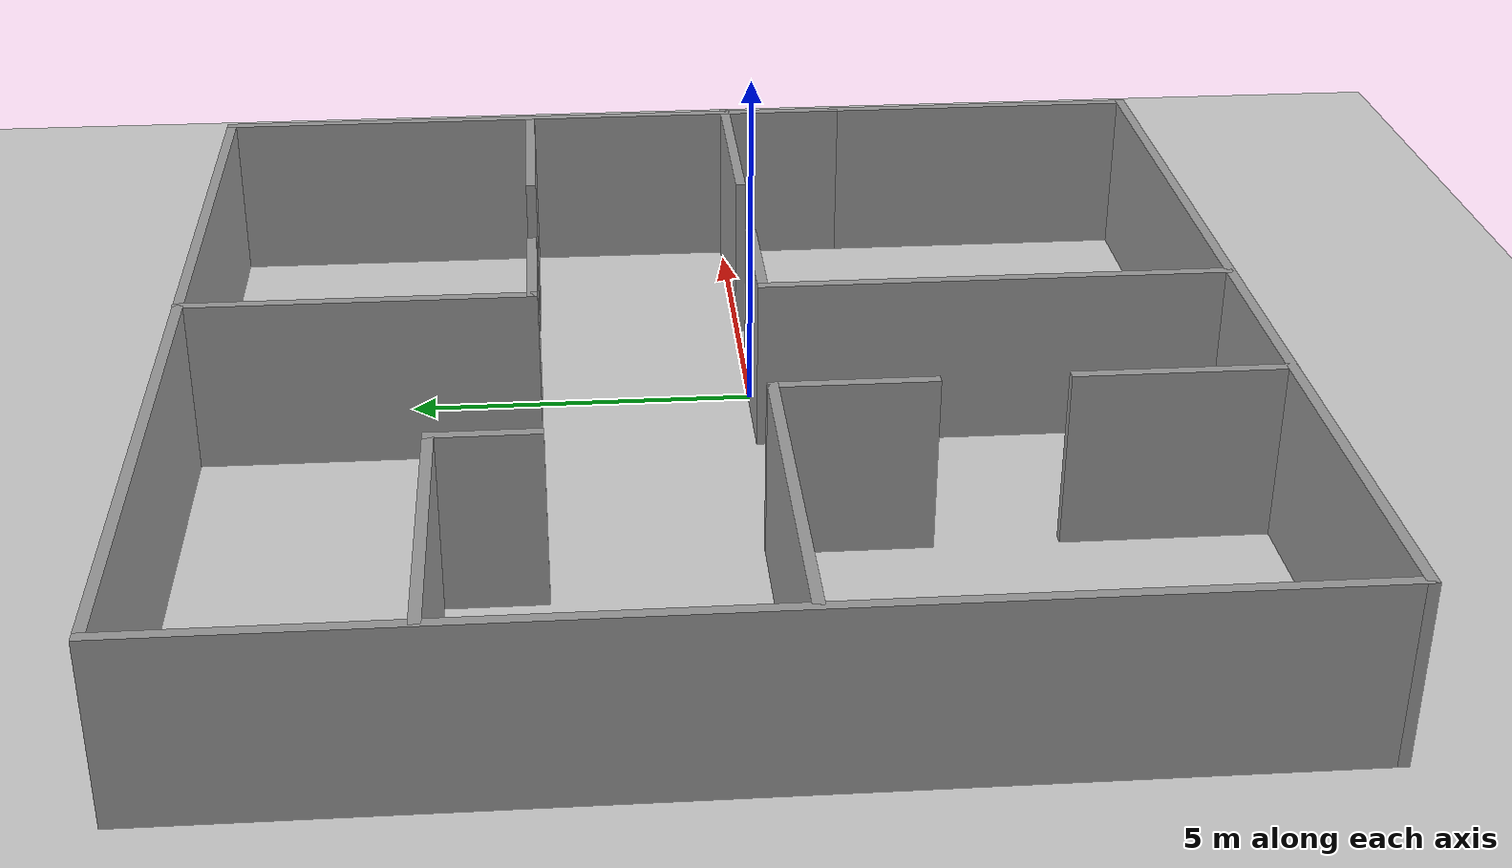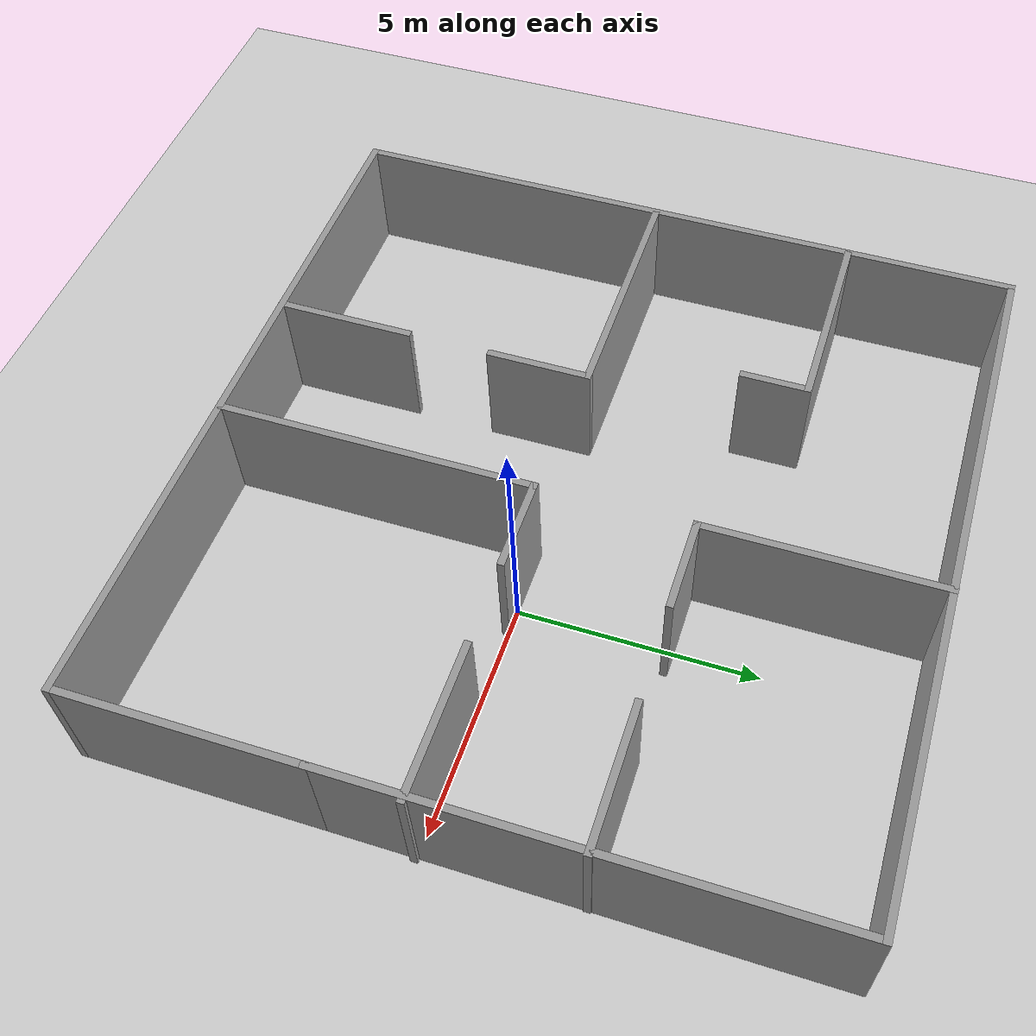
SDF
<sdf version="1.7">
 <world name="default">
  <light name="sun" type="directional">
   <pose>0 0 10 0 -0 0</pose>
   <diffuse>0.8 0.8 0.8 1</diffuse>
   <specular>0.2 0.2 0.2 1</specular>
   <attenuation>
    <range>1000</range>
    <constant>0.9</constant>
    <linear>0.01</linear>
    <quadratic>0.001</quadratic>
   </attenuation>
   <direction>-0.5 0.1 -0.9</direction>
   <spot><inner_angle>0</inner_angle><outer_angle>0</outer_angle><falloff>0</falloff></spot>
  </light>
  <model name="ground_plane">
   <static>1</static>
   <link name="link">
    <collision name="collision">
     <geometry><plane><normal>0 0 1</normal><size>100 100</size></plane></geometry>
     <surface>
      <contact><collide_bitmask>65535</collide_bitmask></contact>
      <friction><ode><mu>100</mu><mu2>50</mu2></ode></friction>
     </surface>
    </collision>
    <visual name="visual">
     <cast_shadows>0</cast_shadows>
     <geometry><plane><normal>0 0 1</normal><size>100 100</size></plane></geometry>
     <material>
      <script><uri>file://media/materials/scripts/gazebo.material</uri><name>Gazebo/Grey</name></script>
     </material>
    </visual>
   </link>
  </model>
  <gravity>0 0 -9.8</gravity>
  <magnetic_field>6e-06 2.3e-05 -4.2e-05</magnetic_field>
  <atmosphere type="adiabatic"/>
  <physics type="ode">
   <max_step_size>0.001</max_step_size>
   <real_time_factor>1</real_time_factor>
   <real_time_update_rate>1000</real_time_update_rate>
  </physics>
  <scene><ambient>0.4 0.4 0.4 1</ambient><background>0.7 0.7 0.7 1</background><shadows>1</shadows></scene>
  <audio><device>default</device></audio>
  <spherical_coordinates>
   <surface_model>EARTH_WGS84</surface_model>
   <latitude_deg>0</latitude_deg>
   <longitude_deg>0</longitude_deg>
   <elevation>0</elevation>
   <heading_deg>0</heading_deg>
  </spherical_coordinates>
  <model name="Map1">
   <pose>-2.03505 0.662672 0 0 -0 0</pose>
   <link name="Wall_10">
    <collision name="Wall_10_Collision">
     <geometry><box><size>5.25 0.15 2.5</size></box></geometry>
     <pose>0 0 1.25 0 -0 0</pose>
    </collision>
    <visual name="Wall_10_Visual">
     <pose>0 0 1.25 0 -0 0</pose>
     <geometry><box><size>5.25 0.15 2.5</size></box></geometry>
     <material>
      <script><uri>file://media/materials/scripts/gazebo.material</uri><name>Gazebo/Grey</name></script>
      <ambient>1 1 1 1</ambient>
     </material>
     <meta><layer>0</layer></meta>
    </visual>
    <pose>-4.86769 -0.554712 0 0 -0 0</pose>
   </link>
   <link name="Wall_27">
    <collision name="Wall_27_Collision">
     <geometry><box><size>2.25 0.15 2.5</size></box></geometry>
     <pose>0 0 1.25 0 -0 0</pose>
    </collision>
    <visual name="Wall_27_Visual">
     <pose>0 0 1.25 0 -0 0</pose>
     <geometry><box><size>2.25 0.15 2.5</size></box></geometry>
     <material>
      <script><uri>file://media/materials/scripts/gazebo.material</uri><name>Gazebo/Grey</name></script>
      <ambient>1 1 1 1</ambient>
     </material>
     <meta><layer>0</layer></meta>
    </visual>
    <pose>-2.31769 -1.60471 0 0 -0 -1.5708</pose>
   </link>
   <link name="Wall_29">
    <collision name="Wall_29_Collision">
     <geometry><box><size>3 0.15 2.5</size></box></geometry>
     <pose>0 0 1.25 0 -0 0</pose>
    </collision>
    <visual name="Wall_29_Visual">
     <pose>0 0 1.25 0 -0 0</pose>
     <geometry><box><size>3 0.15 2.5</size></box></geometry>
     <material>
      <script><uri>file://media/materials/scripts/gazebo.material</uri><name>Gazebo/Grey</name></script>
      <ambient>1 1 1 1</ambient>
     </material>
     <meta><layer>0</layer></meta>
    </visual>
    <pose>-2.31769 -5.92971 0 0 -0 -1.5708</pose>
   </link>
   <link name="Wall_32">
    <collision name="Wall_32_Collision">
     <geometry><box><size>5 0.15 2.5</size></box></geometry>
     <pose>0 0 1.25 0 -0 0</pose>
    </collision>
    <visual name="Wall_32_Visual">
     <pose>0 0 1.25 0 -0 0</pose>
     <geometry><box><size>5 0.15 2.5</size></box></geometry>
     <material>
      <script><uri>file://media/materials/scripts/gazebo.material</uri><name>Gazebo/Grey</name></script>
      <ambient>1 1 1 1</ambient>
     </material>
     <meta><layer>0</layer></meta>
    </visual>
    <pose>0.609637 4.92971 0 0 -0 -1.5708</pose>
   </link>
   <link name="Wall_33">
    <collision name="Wall_33_Collision">
     <geometry><box><size>2 0.15 2.5</size></box></geometry>
     <pose>0 0 1.25 0 -0 0</pose>
    </collision>
    <visual name="Wall_33_Visual">
     <pose>0 0 1.25 0 -0 0</pose>
     <geometry><box><size>2 0.15 2.5</size></box></geometry>
     <material>
      <script><uri>file://media/materials/scripts/gazebo.material</uri><name>Gazebo/Grey</name></script>
      <ambient>1 1 1 1</ambient>
     </material>
     <meta><layer>0</layer></meta>
    </visual>
    <pose>1.53464 2.50471 0 0 -0 0</pose>
   </link>
   <link name="Wall_35">
    <collision name="Wall_35_Collision">
     <geometry><box><size>3 0.15 2.5</size></box></geometry>
     <pose>0 0 1.25 0 -0 0</pose>
    </collision>
    <visual name="Wall_35_Visual">
     <pose>0 0 1.25 0 -0 0</pose>
     <geometry><box><size>3 0.15 2.5</size></box></geometry>
     <material>
      <script><uri>file://media/materials/scripts/gazebo.material</uri><name>Gazebo/Grey</name></script>
      <ambient>1 1 1 1</ambient>
     </material>
     <meta><layer>0</layer></meta>
    </visual>
    <pose>5.98464 2.50471 0 0 -0 0</pose>
   </link>
   <link name="Wall_37">
    <collision name="Wall_37_Collision">
     <geometry><box><size>6.75 0.15 2.5</size></box></geometry>
     <pose>0 0 1.25 0 -0 0</pose>
    </collision>
    <visual name="Wall_37_Visual">
     <pose>0 0 1.25 0 -0 0</pose>
     <geometry><box><size>6.75 0.15 2.5</size></box></geometry>
     <material>
      <script><uri>file://media/materials/scripts/gazebo.material</uri><name>Gazebo/Grey</name></script>
      <ambient>1 1 1 1</ambient>
     </material>
     <meta><layer>0</layer></meta>
    </visual>
    <pose>0.66546 -4.01059 0 0 -0 1.5708</pose>
   </link>
   <link name="Wall_38">
    <collision name="Wall_38_Collision">
     <geometry><box><size>2 0.15 2.5</size></box></geometry>
     <pose>0 0 1.25 0 -0 0</pose>
    </collision>
    <visual name="Wall_38_Visual">
     <pose>0 0 1.25 0 -0 0</pose>
     <geometry><box><size>2 0.15 2.5</size></box></geometry>
     <material>
      <script><uri>file://media/materials/scripts/gazebo.material</uri><name>Gazebo/Grey</name></script>
      <ambient>1 1 1 1</ambient>
     </material>
     <meta><layer>0</layer></meta>
    </visual>
    <pose>1.59046 -0.710586 0 0 -0 0</pose>
   </link>
   <link name="Wall_4">
    <collision name="Wall_4_Collision">
     <geometry><box><size>15 0.15 2.5</size></box></geometry>
     <pose>0 0 1.25 0 -0 0</pose>
    </collision>
    <visual name="Wall_4_Visual">
     <pose>0 0 1.25 0 -0 0</pose>
     <geometry><box><size>15 0.15 2.5</size></box></geometry>
     <material>
      <script><uri>file://media/materials/scripts/gazebo.material</uri><name>Gazebo/Grey</name></script>
      <ambient>1 1 1 1</ambient>
     </material>
     <meta><layer>0</layer></meta>
    </visual>
    <pose>-0.04046 7.34706 0 0 -0 0</pose>
   </link>
   <link name="Wall_42">
    <collision name="Wall_42_Collision">
     <geometry><box><size>3.25 0.15 2.5</size></box></geometry>
     <pose>0 0 1.25 0 -0 0</pose>
    </collision>
    <visual name="Wall_42_Visual">
     <pose>0 0 1.25 0 -0 0</pose>
     <geometry><box><size>3.25 0.15 2.5</size></box></geometry>
     <material>
      <script><uri>file://media/materials/scripts/gazebo.material</uri><name>Gazebo/Grey</name></script>
      <ambient>1 1 1 1</ambient>
     </material>
     <meta><layer>0</layer></meta>
    </visual>
    <pose>5.91546 -0.710586 0 0 -0 0</pose>
   </link>
   <link name="Wall_44">
    <collision name="Wall_44_Collision">
     <geometry><box><size>4.25 0.15 2.5</size></box></geometry>
     <pose>0 0 1.25 0 -0 0</pose>
    </collision>
    <visual name="Wall_44_Visual">
     <pose>0 0 1.25 0 -0 0</pose>
     <geometry><box><size>4.25 0.15 2.5</size></box></geometry>
     <material>
      <script><uri>file://media/materials/scripts/gazebo.material</uri><name>Gazebo/Grey</name></script>
      <ambient>1 1 1 1</ambient>
     </material>
     <meta><layer>0</layer></meta>
    </visual>
    <pose>-5.37314 3.80333 0 0 -0 0</pose>
   </link>
   <link name="Wall_45">
    <collision name="Wall_45_Collision">
     <geometry><box><size>1.5 0.15 2.5</size></box></geometry>
     <pose>0 0 1.25 0 -0 0</pose>
    </collision>
    <visual name="Wall_45_Visual">
     <pose>0 0 1.25 0 -0 0</pose>
     <geometry><box><size>1.5 0.15 2.5</size></box></geometry>
     <material>
      <script><uri>file://media/materials/scripts/gazebo.material</uri><name>Gazebo/Grey</name></script>
      <ambient>1 1 1 1</ambient>
     </material>
     <meta><layer>0</layer></meta>
    </visual>
    <pose>-3.32314 3.12832 0 0 -0 -1.5708</pose>
   </link>
   <link name="Wall_5">
    <collision name="Wall_5_Collision">
     <geometry><box><size>10 0.15 2.5</size></box></geometry>
     <pose>0 0 1.25 0 -0 0</pose>
    </collision>
    <visual name="Wall_5_Visual">
     <pose>0 0 1.25 0 -0 0</pose>
     <geometry><box><size>10 0.15 2.5</size></box></geometry>
     <material>
      <script><uri>file://media/materials/scripts/gazebo.material</uri><name>Gazebo/Grey</name></script>
      <ambient>1 1 1 1</ambient>
     </material>
     <meta><layer>0</layer></meta>
    </visual>
    <pose>7.38454 2.42206 0 0 -0 -1.5708</pose>
   </link>
   <link name="Wall_6">
    <collision name="Wall_6_Collision">
     <geometry><box><size>5 0.15 2.5</size></box></geometry>
     <pose>0 0 1.25 0 -0 0</pose>
    </collision>
    <visual name="Wall_6_Visual">
     <pose>0 0 1.25 0 -0 0</pose>
     <geometry><box><size>5 0.15 2.5</size></box></geometry>
     <material>
      <script><uri>file://media/materials/scripts/gazebo.material</uri><name>Gazebo/Grey</name></script>
      <ambient>1 1 1 1</ambient>
     </material>
     <meta><layer>0</layer></meta>
    </visual>
    <pose>7.38454 -4.92794 0 0 -0 -1.5708</pose>
   </link>
   <link name="Wall_7">
    <collision name="Wall_7_Collision">
     <geometry><box><size>15 0.15 2.5</size></box></geometry>
     <pose>0 0 1.25 0 -0 0</pose>
    </collision>
    <visual name="Wall_7_Visual">
     <pose>0 0 1.25 0 -0 0</pose>
     <geometry><box><size>15 0.15 2.5</size></box></geometry>
     <material>
      <script><uri>file://media/materials/scripts/gazebo.material</uri><name>Gazebo/Grey</name></script>
      <ambient>1 1 1 1</ambient>
     </material>
     <meta><layer>0</layer></meta>
    </visual>
    <pose>-0.04046 -7.35294 0 0 -0 3.14159</pose>
   </link>
   <link name="Wall_8">
    <collision name="Wall_8_Collision">
     <geometry><box><size>14.85 0.15 2.5</size></box></geometry>
     <pose>0 0 1.25 0 -0 0</pose>
    </collision>
    <visual name="Wall_8_Visual">
     <pose>0 0 1.25 0 -0 0</pose>
     <geometry><box><size>14.85 0.15 2.5</size></box></geometry>
     <material>
      <script><uri>file://media/materials/scripts/gazebo.material</uri><name>Gazebo/Grey</name></script>
      <ambient>1 1 1 1</ambient>
     </material>
     <meta><layer>0</layer></meta>
    </visual>
    <pose>-7.46546 -0.002943 0 0 -0 1.5708</pose>
   </link>
   <static>1</static>
  </model>
 </world>
</sdf>
